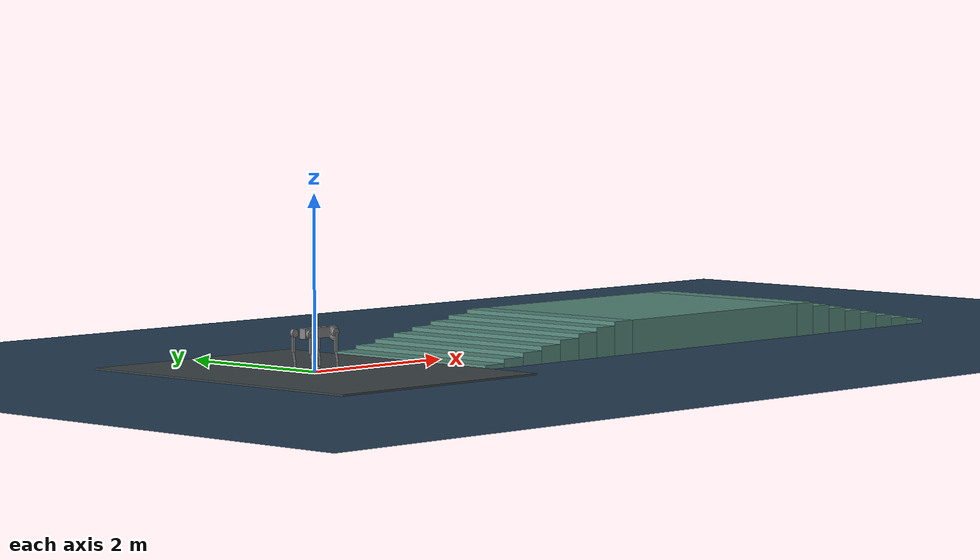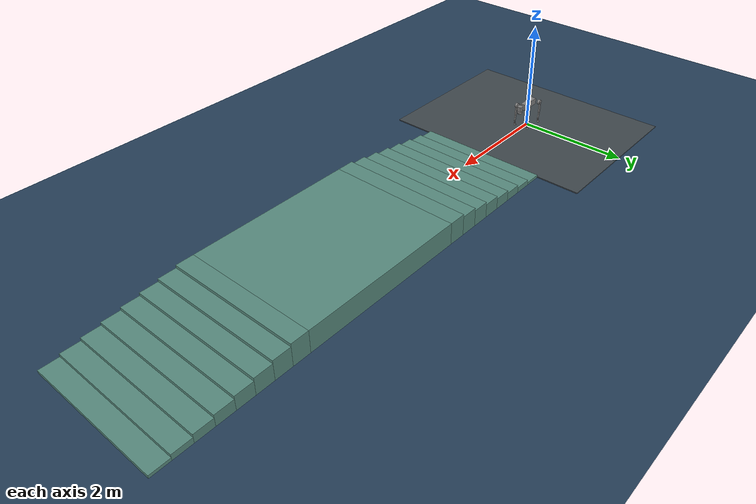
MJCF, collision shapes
<mujoco model="go2 scene_stairs_L0">
  <include file="../go2.xml"/>
  <!-- go2.xml sets meshdir="assets"; override so meshes resolve from MCJF/ -->
  <compiler meshdir="../assets"/>

  <statistic center="6 0 0.4" extent="10"/>

  <visual>
    <headlight diffuse="0.6 0.6 0.6" ambient="0.3 0.3 0.3" specular="0 0 0"/>
    <rgba haze="0.15 0.25 0.35 1"/>
    <global azimuth="-130" elevation="-20"/>
  </visual>

  <asset>
    <texture type="skybox" builtin="gradient" rgb1="0.3 0.5 0.7" rgb2="0 0 0" width="512" height="3072"/>
    <texture type="2d" name="groundplane" builtin="checker" mark="edge"
      rgb1="0.2 0.3 0.4" rgb2="0.1 0.2 0.3" markrgb="0.8 0.8 0.8" width="300" height="300"/>
    <material name="groundplane" texture="groundplane" texuniform="true" texrepeat="5 5" reflectance="0.2"/>
  </asset>

  <worldbody>
    <light pos="0 0 3.0" dir="0 0 -1" directional="true"/>
    <geom name="floor" size="0 0 0.05" type="plane" material="groundplane"/>
    <geom name="spawn_pad" type="box" pos="0.0000 0.0000 0.0100" size="1.5000 2.0000 0.0100" quat="1.0 0.0 0.0 0.0" rgba="0.25 0.28 0.30 1" contype="1" conaffinity="1"/>
    <geom name="stairs_up_0" type="box" pos="1.6550 0.0000 0.0250" size="0.1550 1.2000 0.0250" quat="1.0 0.0 0.0 0.0" rgba="0.35 0.55 0.50 1" contype="1" conaffinity="1"/>
    <geom name="stairs_up_1" type="box" pos="1.9650 0.0000 0.0500" size="0.1550 1.2000 0.0500" quat="1.0 0.0 0.0 0.0" rgba="0.35 0.55 0.50 1" contype="1" conaffinity="1"/>
    <geom name="stairs_up_2" type="box" pos="2.2750 0.0000 0.0750" size="0.1550 1.2000 0.0750" quat="1.0 0.0 0.0 0.0" rgba="0.35 0.55 0.50 1" contype="1" conaffinity="1"/>
    <geom name="stairs_up_3" type="box" pos="2.5850 0.0000 0.1000" size="0.1550 1.2000 0.1000" quat="1.0 0.0 0.0 0.0" rgba="0.35 0.55 0.50 1" contype="1" conaffinity="1"/>
    <geom name="stairs_up_4" type="box" pos="2.8950 0.0000 0.1250" size="0.1550 1.2000 0.1250" quat="1.0 0.0 0.0 0.0" rgba="0.35 0.55 0.50 1" contype="1" conaffinity="1"/>
    <geom name="stairs_up_5" type="box" pos="3.2050 0.0000 0.1500" size="0.1550 1.2000 0.1500" quat="1.0 0.0 0.0 0.0" rgba="0.35 0.55 0.50 1" contype="1" conaffinity="1"/>
    <geom name="stairs_up_6" type="box" pos="3.5150 0.0000 0.1750" size="0.1550 1.2000 0.1750" quat="1.0 0.0 0.0 0.0" rgba="0.35 0.55 0.50 1" contype="1" conaffinity="1"/>
    <geom name="stairs_up_7" type="box" pos="3.8250 0.0000 0.2000" size="0.1550 1.2000 0.2000" quat="1.0 0.0 0.0 0.0" rgba="0.35 0.55 0.50 1" contype="1" conaffinity="1"/>
    <geom name="stairs_plat" type="box" pos="5.4800 0.0000 0.2000" size="1.5000 1.2000 0.2000" quat="1.0 0.0 0.0 0.0" rgba="0.35 0.55 0.50 1" contype="1" conaffinity="1"/>
    <geom name="stairs_dn_0" type="box" pos="7.1350 0.0000 0.2000" size="0.1550 1.2000 0.2000" quat="1.0 0.0 0.0 0.0" rgba="0.35 0.55 0.50 1" contype="1" conaffinity="1"/>
    <geom name="stairs_dn_1" type="box" pos="7.4450 0.0000 0.1750" size="0.1550 1.2000 0.1750" quat="1.0 0.0 0.0 0.0" rgba="0.35 0.55 0.50 1" contype="1" conaffinity="1"/>
    <geom name="stairs_dn_2" type="box" pos="7.7550 0.0000 0.1500" size="0.1550 1.2000 0.1500" quat="1.0 0.0 0.0 0.0" rgba="0.35 0.55 0.50 1" contype="1" conaffinity="1"/>
    <geom name="stairs_dn_3" type="box" pos="8.0650 0.0000 0.1250" size="0.1550 1.2000 0.1250" quat="1.0 0.0 0.0 0.0" rgba="0.35 0.55 0.50 1" contype="1" conaffinity="1"/>
    <geom name="stairs_dn_4" type="box" pos="8.3750 0.0000 0.1000" size="0.1550 1.2000 0.1000" quat="1.0 0.0 0.0 0.0" rgba="0.35 0.55 0.50 1" contype="1" conaffinity="1"/>
    <geom name="stairs_dn_5" type="box" pos="8.6850 0.0000 0.0750" size="0.1550 1.2000 0.0750" quat="1.0 0.0 0.0 0.0" rgba="0.35 0.55 0.50 1" contype="1" conaffinity="1"/>
    <geom name="stairs_dn_6" type="box" pos="8.9950 0.0000 0.0500" size="0.1550 1.2000 0.0500" quat="1.0 0.0 0.0 0.0" rgba="0.35 0.55 0.50 1" contype="1" conaffinity="1"/>
    <geom name="stairs_dn_7" type="box" pos="9.3050 0.0000 0.0250" size="0.1550 1.2000 0.0250" quat="1.0 0.0 0.0 0.0" rgba="0.35 0.55 0.50 1" contype="1" conaffinity="1"/>
  </worldbody>
</mujoco>

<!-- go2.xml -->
<mujoco model="go2">
  <compiler angle="radian" meshdir="assets" autolimits="true"/>

  <option cone="elliptic" impratio="100"/>

  <default>
    <default class="go2">
      <geom friction="0.6" margin="0.001" condim="1"/>
      <joint axis="0 1 0" damping="2" armature="0.01" frictionloss="0.2"/>
      <motor ctrlrange="-23.7 23.7"/>
      <default class="abduction">
        <joint axis="1 0 0" range="-1.0472 1.0472"/>
      </default>
      <default class="hip">
        <default class="front_hip">
          <joint range="-1.5708 3.4907"/>
        </default>
        <default class="back_hip">
          <joint range="-0.5236 4.5379"/>
        </default>
      </default>
      <default class="knee">
        <joint range="-2.7227 -0.83776"/>
        <motor ctrlrange="-45.43 45.43"/>
      </default>
      <default class="visual">
        <geom type="mesh" contype="0" conaffinity="0" group="2"/>
      </default>
      <default class="collision">
        <geom group="3"/>
        <default class="foot">
          <geom size="0.022" pos="-0.002 0 -0.213" priority="1" solimp="0.015 1 0.022" condim="6"
            friction="0.8 0.02 0.01"/>
        </default>
      </default>
    </default>
  </default>

  <asset>
    <material name="metal" rgba=".9 .95 .95 1"/>
    <material name="black" rgba="0 0 0 1"/>
    <material name="white" rgba="1 1 1 1"/>
    <material name="gray" rgba="0.671705 0.692426 0.774270 1"/>

    <mesh file="base_0.obj"/>
    <mesh file="base_1.obj"/>
    <mesh file="base_2.obj"/>
    <mesh file="base_3.obj"/>
    <mesh file="base_4.obj"/>
    <mesh file="hip_0.obj"/>
    <mesh file="hip_1.obj"/>
    <mesh file="thigh_0.obj"/>
    <mesh file="thigh_1.obj"/>
    <mesh file="thigh_mirror_0.obj"/>
    <mesh file="thigh_mirror_1.obj"/>
    <mesh file="calf_0.obj"/>
    <mesh file="calf_1.obj"/>
    <mesh file="calf_mirror_0.obj"/>
    <mesh file="calf_mirror_1.obj"/>
    <mesh file="foot.obj"/>
  </asset>

  <worldbody>
    <body name="base" pos="0 0 0.445" childclass="go2">
      <inertial pos="0.021112 0 -0.005366" quat="-0.000543471 0.713435 -0.00173769 0.700719" mass="6.921"
        diaginertia="0.107027 0.0980771 0.0244531"/>
      <freejoint/>
      <geom mesh="base_0" material="black" class="visual"/>
      <geom mesh="base_1" material="black" class="visual"/>
      <geom mesh="base_2" material="black" class="visual"/>
      <geom mesh="base_3" material="white" class="visual"/>
      <geom mesh="base_4" material="gray" class="visual"/>
      <geom size="0.1881 0.04675 0.057" type="box" class="collision"/>
      <geom size="0.05 0.045" pos="0.285 0 0.01" type="cylinder" class="collision"/>
      <geom size="0.047" pos="0.293 0 -0.06" class="collision"/>
      <site name="imu" pos="-0.02557 0 0.04232"/>
      <body name="FL_hip" pos="0.1934 0.0465 0">
        <inertial pos="-0.0054 0.00194 -0.000105" quat="0.497014 0.499245 0.505462 0.498237" mass="0.678"
          diaginertia="0.00088403 0.000596003 0.000479967"/>
        <joint name="FL_hip_joint" class="abduction"/>
        <geom mesh="hip_0" material="metal" class="visual"/>
        <geom mesh="hip_1" material="gray" class="visual"/>
        <geom size="0.046 0.02" pos="0 0.08 0" quat="1 1 0 0" type="cylinder" class="collision"/>
        <body name="FL_thigh" pos="0 0.0955 0">
          <inertial pos="-0.00374 -0.0223 -0.0327" quat="0.829533 0.0847635 -0.0200632 0.551623" mass="1.152"
            diaginertia="0.00594973 0.00584149 0.000878787"/>
          <joint name="FL_thigh_joint" class="front_hip"/>
          <geom mesh="thigh_0" material="metal" class="visual"/>
          <geom mesh="thigh_1" material="gray" class="visual"/>
          <geom size="0.1065 0.01225 0.017" pos="0 0 -0.1065" quat="0.707107 0 0.707107 0" type="box"
            class="collision"/>
          <body name="FL_calf" pos="0 0 -0.213">
            <inertial pos="0.00629595 -0.000622121 -0.141417" quat="0.710672 0.00154099 -0.00450087 0.703508"
              mass="0.241352" diaginertia="0.0014901 0.00146356 5.31397e-05"/>
            <joint name="FL_calf_joint" class="knee"/>
            <geom mesh="calf_0" material="gray" class="visual"/>
            <geom mesh="calf_1" material="black" class="visual"/>
            <geom size="0.012 0.06" pos="0.008 0 -0.06" quat="0.994493 0 -0.104807 0" type="cylinder"
              class="collision"/>
            <geom size="0.011 0.0325" pos="0.02 0 -0.148" quat="0.999688 0 0.0249974 0" type="cylinder"
              class="collision"/>
            <geom pos="0 0 -0.213" mesh="foot" class="visual" material="black"/>
            <geom name="FL" class="foot"/>
          </body>
        </body>
      </body>
      <body name="FR_hip" pos="0.1934 -0.0465 0">
        <inertial pos="-0.0054 -0.00194 -0.000105" quat="0.498237 0.505462 0.499245 0.497014" mass="0.678"
          diaginertia="0.00088403 0.000596003 0.000479967"/>
        <joint name="FR_hip_joint" class="abduction"/>
        <geom mesh="hip_0" material="metal" class="visual" quat="4.63268e-05 1 0 0"/>
        <geom mesh="hip_1" material="gray" class="visual" quat="4.63268e-05 1 0 0"/>
        <geom size="0.046 0.02" pos="0 -0.08 0" quat="0.707107 0.707107 0 0" type="cylinder" class="collision"/>
        <body name="FR_thigh" pos="0 -0.0955 0">
          <inertial pos="-0.00374 0.0223 -0.0327" quat="0.551623 -0.0200632 0.0847635 0.829533" mass="1.152"
            diaginertia="0.00594973 0.00584149 0.000878787"/>
          <joint name="FR_thigh_joint" class="front_hip"/>
          <geom mesh="thigh_mirror_0" material="metal" class="visual"/>
          <geom mesh="thigh_mirror_1" material="gray" class="visual"/>
          <geom size="0.1065 0.01225 0.017" pos="0 0 -0.1065" quat="0.707107 0 0.707107 0" type="box"
            class="collision"/>
          <body name="FR_calf" pos="0 0 -0.213">
            <inertial pos="0.00629595 0.000622121 -0.141417" quat="0.703508 -0.00450087 0.00154099 0.710672"
              mass="0.241352" diaginertia="0.0014901 0.00146356 5.31397e-05"/>
            <joint name="FR_calf_joint" class="knee"/>
            <geom mesh="calf_mirror_0" material="gray" class="visual"/>
            <geom mesh="calf_mirror_1" material="black" class="visual"/>
            <geom size="0.013 0.06" pos="0.01 0 -0.06" quat="0.995004 0 -0.0998334 0" type="cylinder"
              class="collision"/>
            <geom size="0.011 0.0325" pos="0.02 0 -0.148" quat="0.999688 0 0.0249974 0" type="cylinder"
              class="collision"/>
            <geom pos="0 0 -0.213" mesh="foot" class="visual" material="black"/>
            <geom name="FR" class="foot"/>
          </body>
        </body>
      </body>
      <body name="RL_hip" pos="-0.1934 0.0465 0">
        <inertial pos="0.0054 0.00194 -0.000105" quat="0.505462 0.498237 0.497014 0.499245" mass="0.678"
          diaginertia="0.00088403 0.000596003 0.000479967"/>
        <joint name="RL_hip_joint" class="abduction"/>
        <geom mesh="hip_0" material="metal" class="visual" quat="4.63268e-05 0 1 0"/>
        <geom mesh="hip_1" material="gray" class="visual" quat="4.63268e-05 0 1 0"/>
        <geom size="0.046 0.02" pos="0 0.08 0" quat="0.707107 0.707107 0 0" type="cylinder" class="collision"/>
        <body name="RL_thigh" pos="0 0.0955 0">
          <inertial pos="-0.00374 -0.0223 -0.0327" quat="0.829533 0.0847635 -0.0200632 0.551623" mass="1.152"
            diaginertia="0.00594973 0.00584149 0.000878787"/>
          <joint name="RL_thigh_joint" class="back_hip"/>
          <geom mesh="thigh_0" material="metal" class="visual"/>
          <geom mesh="thigh_1" material="gray" class="visual"/>
          <geom size="0.1065 0.01225 0.017" pos="0 0 -0.1065" quat="0.707107 0 0.707107 0" type="box"
            class="collision"/>
          <body name="RL_calf" pos="0 0 -0.213">
            <inertial pos="0.00629595 -0.000622121 -0.141417" quat="0.710672 0.00154099 -0.00450087 0.703508"
              mass="0.241352" diaginertia="0.0014901 0.00146356 5.31397e-05"/>
            <joint name="RL_calf_joint" class="knee"/>
            <geom mesh="calf_0" material="gray" class="visual"/>
            <geom mesh="calf_1" material="black" class="visual"/>
            <geom size="0.013 0.06" pos="0.01 0 -0.06" quat="0.995004 0 -0.0998334 0" type="cylinder"
              class="collision"/>
            <geom size="0.011 0.0325" pos="0.02 0 -0.148" quat="0.999688 0 0.0249974 0" type="cylinder"
              class="collision"/>
            <geom pos="0 0 -0.213" mesh="foot" class="visual" material="black"/>
            <geom name="RL" class="foot"/>
          </body>
        </body>
      </body>
      <body name="RR_hip" pos="-0.1934 -0.0465 0">
        <inertial pos="0.0054 -0.00194 -0.000105" quat="0.499245 0.497014 0.498237 0.505462" mass="0.678"
          diaginertia="0.00088403 0.000596003 0.000479967"/>
        <joint name="RR_hip_joint" class="abduction"/>
        <geom mesh="hip_0" material="metal" class="visual" quat="2.14617e-09 4.63268e-05 4.63268e-05 -1"/>
        <geom mesh="hip_1" material="gray" class="visual" quat="2.14617e-09 4.63268e-05 4.63268e-05 -1"/>
        <geom size="0.046 0.02" pos="0 -0.08 0" quat="0.707107 0.707107 0 0" type="cylinder" class="collision"/>
        <body name="RR_thigh" pos="0 -0.0955 0">
          <inertial pos="-0.00374 0.0223 -0.0327" quat="0.551623 -0.0200632 0.0847635 0.829533" mass="1.152"
            diaginertia="0.00594973 0.00584149 0.000878787"/>
          <joint name="RR_thigh_joint" class="back_hip"/>
          <geom mesh="thigh_mirror_0" material="metal" class="visual"/>
          <geom mesh="thigh_mirror_1" material="gray" class="visual"/>
          <geom size="0.1065 0.01225 0.017" pos="0 0 -0.1065" quat="0.707107 0 0.707107 0" type="box"
            class="collision"/>
          <body name="RR_calf" pos="0 0 -0.213">
            <inertial pos="0.00629595 0.000622121 -0.141417" quat="0.703508 -0.00450087 0.00154099 0.710672"
              mass="0.241352" diaginertia="0.0014901 0.00146356 5.31397e-05"/>
            <joint name="RR_calf_joint" class="knee"/>
            <geom mesh="calf_mirror_0" material="gray" class="visual"/>
            <geom mesh="calf_mirror_1" material="black" class="visual"/>
            <geom size="0.013 0.06" pos="0.01 0 -0.06" quat="0.995004 0 -0.0998334 0" type="cylinder"
              class="collision"/>
            <geom size="0.011 0.0325" pos="0.02 0 -0.148" quat="0.999688 0 0.0249974 0" type="cylinder"
              class="collision"/>
            <geom pos="0 0 -0.213" mesh="foot" class="visual" material="black"/>
            <geom name="RR" class="foot"/>
          </body>
        </body>
      </body>
    </body>
  </worldbody>

  <actuator>
    <motor class="abduction" name="FL_hip" joint="FL_hip_joint"/>
    <motor class="hip" name="FL_thigh" joint="FL_thigh_joint"/>
    <motor class="knee" name="FL_calf" joint="FL_calf_joint"/>
    <motor class="abduction" name="FR_hip" joint="FR_hip_joint"/>
    <motor class="hip" name="FR_thigh" joint="FR_thigh_joint"/>
    <motor class="knee" name="FR_calf" joint="FR_calf_joint"/>
    <motor class="abduction" name="RL_hip" joint="RL_hip_joint"/>
    <motor class="hip" name="RL_thigh" joint="RL_thigh_joint"/>
    <motor class="knee" name="RL_calf" joint="RL_calf_joint"/>
    <motor class="abduction" name="RR_hip" joint="RR_hip_joint"/>
    <motor class="hip" name="RR_thigh" joint="RR_thigh_joint"/>
    <motor class="knee" name="RR_calf" joint="RR_calf_joint"/>
  </actuator>

  <keyframe>
    <key name="home" qpos="0 0 0.27 1 0 0 0 0 0.9 -1.8 0 0.9 -1.8 0 0.9 -1.8 0 0.9 -1.8"
      ctrl="0 0.9 -1.8 0 0.9 -1.8 0 0.9 -1.8 0 0.9 -1.8"/>
  </keyframe>
</mujoco>
